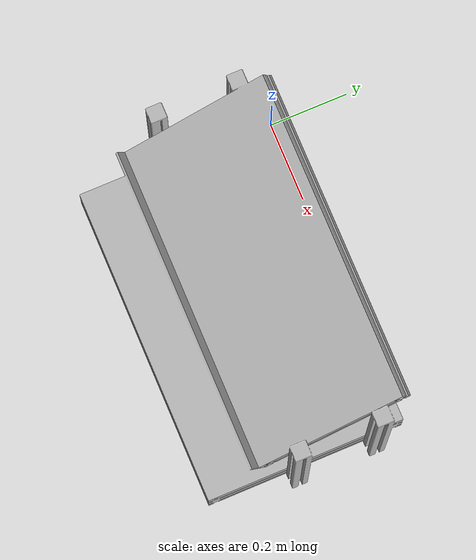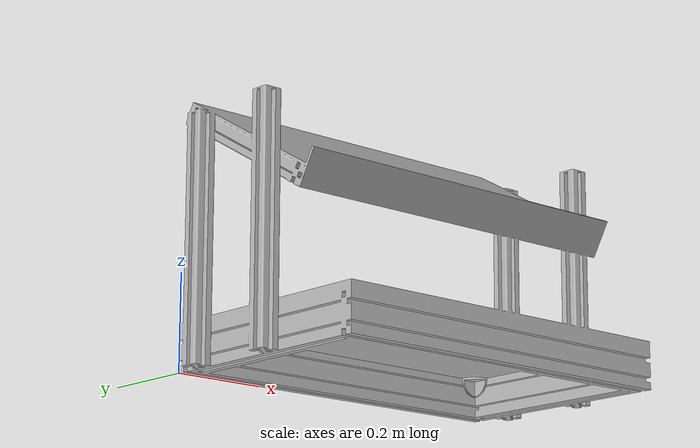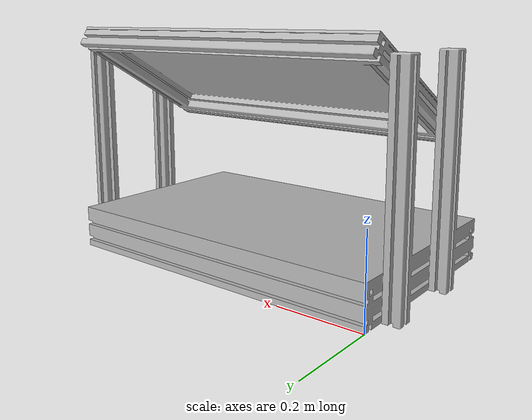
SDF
<?xml version="1.0" ?>
<sdf version="1.5">
  <model name="shelf_assembly_270degree">
    <static>true</static>
    <link name="link">
      <pose>0 0 0 0 0 0</pose>
      <collision name="collision">
        <geometry>
          <mesh>
            <uri>model://shelf_assembly_270degree/meshes/shelf_assembly_270degree.dae</uri>
          </mesh>
        </geometry>
      </collision>
      <visual name="visual">
        <geometry>
          <mesh>
            <uri>model://shelf_assembly_270degree/meshes/shelf_assembly_270degree.dae</uri>
          </mesh>
        </geometry>
      </visual>
    </link>
  </model>
</sdf>
